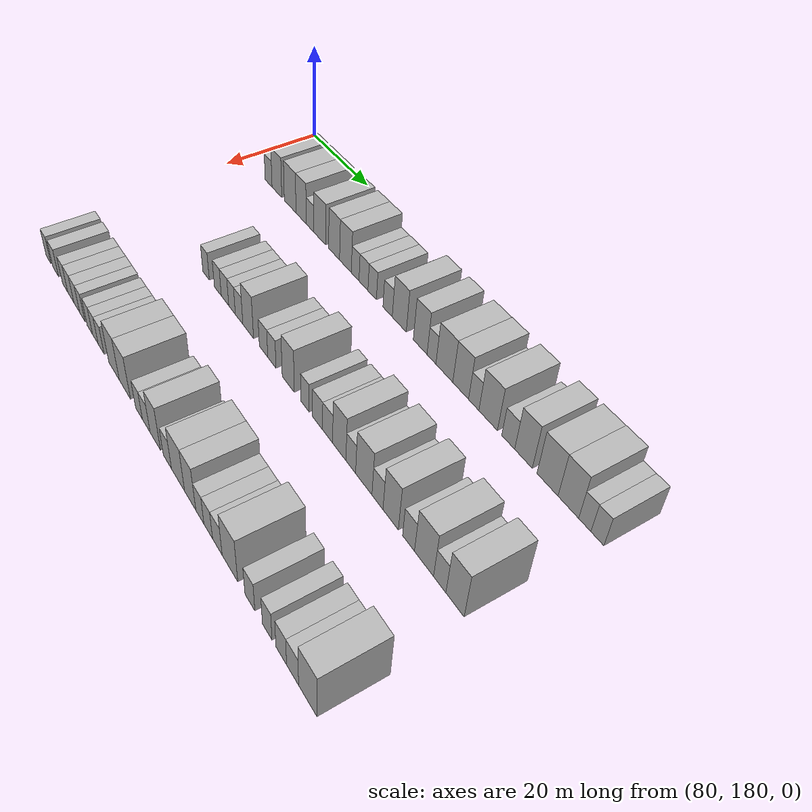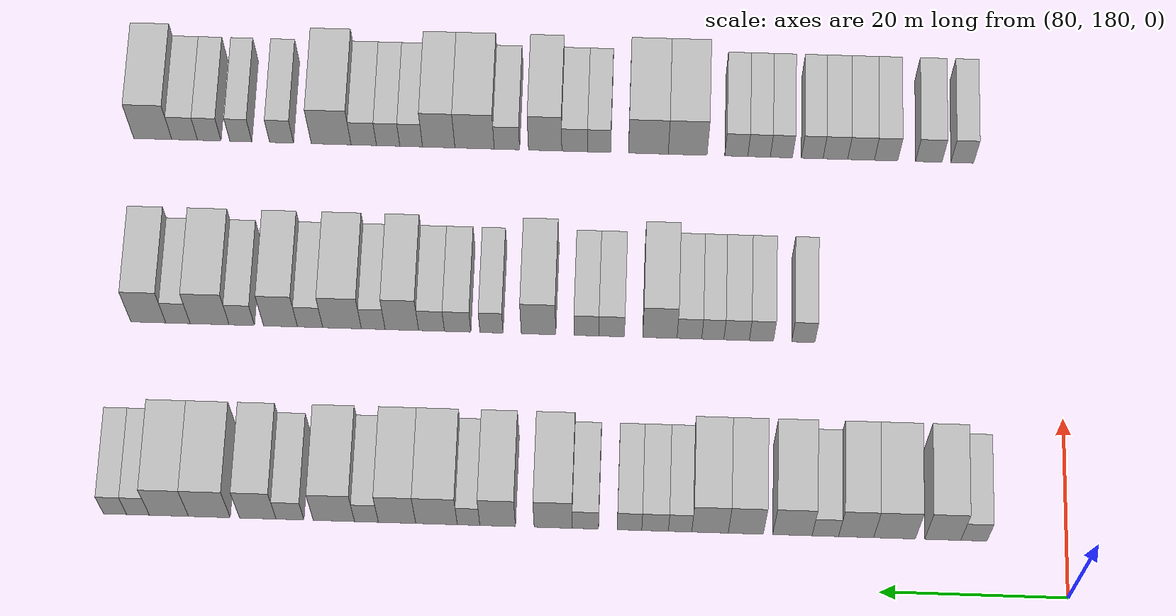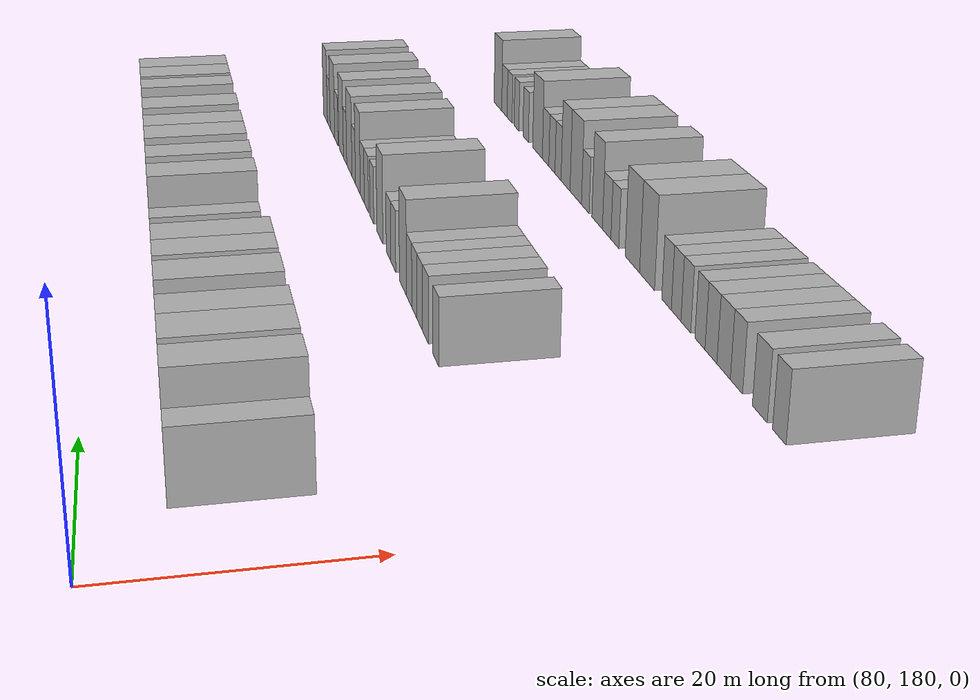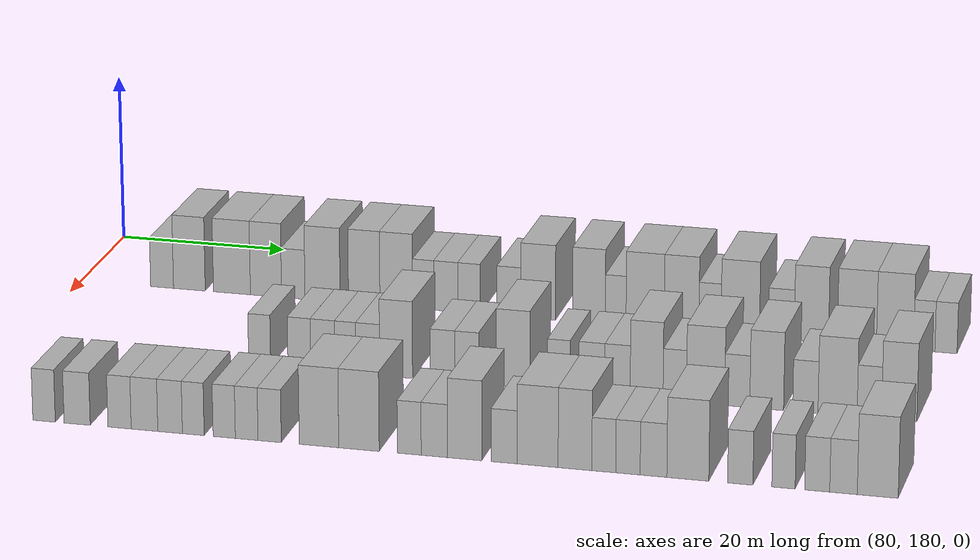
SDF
<sdf version="1.6">
 <world name="default">
  <model name="building_724">
   <static>1</static>
   <pose>91.0000 189.8804 0 0.000000 0.000000 0.000000</pose>
   <link name="link">
    <pose>0 0 3.00 0 0 0</pose>
    <collision name="collision"><geometry><box><size>10.0000 2.7889 6.0000</size></box></geometry></collision>
    <visual name="visual">
     <cast_shadows>0</cast_shadows>
     <geometry><box><size>10.0000 2.7889 6.0000</size></box></geometry>
     <material>
      <script>
       <uri>model://HANNAS_wall/materials/scripts</uri>
       <uri>model://HANNAS_wall/materials/textures</uri>
       <name>vrc/HANNAS_wall</name>
      </script>
     </material>
    </visual>
   </link>
  </model>
  <model name="building_725">
   <static>1</static>
   <pose>91.0000 193.1986 0 0.000000 0.000000 0.000000</pose>
   <link name="link">
    <pose>0 0 4.50 0 0 0</pose>
    <collision name="collision"><geometry><box><size>10.0000 3.8475 9.0000</size></box></geometry></collision>
    <visual name="visual">
     <cast_shadows>0</cast_shadows>
     <geometry><box><size>10.0000 3.8475 9.0000</size></box></geometry>
     <material>
      <script>
       <uri>model://HANNAS_wall/materials/scripts</uri>
       <uri>model://HANNAS_wall/materials/textures</uri>
       <name>vrc/HANNAS_wall</name>
      </script>
     </material>
    </visual>
   </link>
  </model>
  <model name="building_726">
   <static>1</static>
   <pose>91.0000 198.3521 0 0.000000 0.000000 0.000000</pose>
   <link name="link">
    <pose>0 0 4.50 0 0 0</pose>
    <collision name="collision"><geometry><box><size>10.0000 4.4595 9.0000</size></box></geometry></collision>
    <visual name="visual">
     <cast_shadows>0</cast_shadows>
     <geometry><box><size>10.0000 4.4595 9.0000</size></box></geometry>
     <material>
      <script>
       <uri>model://HANNAS_wall/materials/scripts</uri>
       <uri>model://HANNAS_wall/materials/textures</uri>
       <name>vrc/HANNAS_wall</name>
      </script>
     </material>
    </visual>
   </link>
  </model>
  <model name="building_727">
   <static>1</static>
   <pose>91.0000 202.4567 0 0.000000 0.000000 0.000000</pose>
   <link name="link">
    <pose>0 0 4.50 0 0 0</pose>
    <collision name="collision"><geometry><box><size>10.0000 3.7496 9.0000</size></box></geometry></collision>
    <visual name="visual">
     <cast_shadows>0</cast_shadows>
     <geometry><box><size>10.0000 3.7496 9.0000</size></box></geometry>
     <material>
      <script>
       <uri>model://HANNAS_wall/materials/scripts</uri>
       <uri>model://HANNAS_wall/materials/textures</uri>
       <name>vrc/HANNAS_wall</name>
      </script>
     </material>
    </visual>
   </link>
  </model>
  <model name="building_728">
   <static>1</static>
   <pose>91.0000 205.7435 0 0.000000 0.000000 0.000000</pose>
   <link name="link">
    <pose>0 0 3.00 0 0 0</pose>
    <collision name="collision"><geometry><box><size>10.0000 2.8241 6.0000</size></box></geometry></collision>
    <visual name="visual">
     <cast_shadows>0</cast_shadows>
     <geometry><box><size>10.0000 2.8241 6.0000</size></box></geometry>
     <material>
      <script>
       <uri>model://HANNAS_wall/materials/scripts</uri>
       <uri>model://HANNAS_wall/materials/textures</uri>
       <name>vrc/HANNAS_wall</name>
      </script>
     </material>
    </visual>
   </link>
  </model>
  <model name="building_729">
   <static>1</static>
   <pose>91.0000 209.2586 0 0.000000 0.000000 0.000000</pose>
   <link name="link">
    <pose>0 0 4.50 0 0 0</pose>
    <collision name="collision"><geometry><box><size>10.0000 4.2062 9.0000</size></box></geometry></collision>
    <visual name="visual">
     <cast_shadows>0</cast_shadows>
     <geometry><box><size>10.0000 4.2062 9.0000</size></box></geometry>
     <material>
      <script>
       <uri>model://HANNAS_wall/materials/scripts</uri>
       <uri>model://HANNAS_wall/materials/textures</uri>
       <name>vrc/HANNAS_wall</name>
      </script>
     </material>
    </visual>
   </link>
  </model>
  <model name="building_730">
   <static>1</static>
   <pose>91.0000 214.2354 0 0.000000 0.000000 0.000000</pose>
   <link name="link">
    <pose>0 0 4.50 0 0 0</pose>
    <collision name="collision"><geometry><box><size>10.0000 3.7473 9.0000</size></box></geometry></collision>
    <visual name="visual">
     <cast_shadows>0</cast_shadows>
     <geometry><box><size>10.0000 3.7473 9.0000</size></box></geometry>
     <material>
      <script>
       <uri>model://HANNAS_wall/materials/scripts</uri>
       <uri>model://HANNAS_wall/materials/textures</uri>
       <name>vrc/HANNAS_wall</name>
      </script>
     </material>
    </visual>
   </link>
  </model>
  <model name="building_731">
   <static>1</static>
   <pose>91.0000 218.0585 0 0.000000 0.000000 0.000000</pose>
   <link name="link">
    <pose>0 0 4.50 0 0 0</pose>
    <collision name="collision"><geometry><box><size>10.0000 3.8989 9.0000</size></box></geometry></collision>
    <visual name="visual">
     <cast_shadows>0</cast_shadows>
     <geometry><box><size>10.0000 3.8989 9.0000</size></box></geometry>
     <material>
      <script>
       <uri>model://HANNAS_wall/materials/scripts</uri>
       <uri>model://HANNAS_wall/materials/textures</uri>
       <name>vrc/HANNAS_wall</name>
      </script>
     </material>
    </visual>
   </link>
  </model>
  <model name="building_732">
   <static>1</static>
   <pose>91.0000 221.2585 0 0.000000 0.000000 0.000000</pose>
   <link name="link">
    <pose>0 0 3.00 0 0 0</pose>
    <collision name="collision"><geometry><box><size>10.0000 2.5012 6.0000</size></box></geometry></collision>
    <visual name="visual">
     <cast_shadows>0</cast_shadows>
     <geometry><box><size>10.0000 2.5012 6.0000</size></box></geometry>
     <material>
      <script>
       <uri>model://HANNAS_wall/materials/scripts</uri>
       <uri>model://HANNAS_wall/materials/textures</uri>
       <name>vrc/HANNAS_wall</name>
      </script>
     </material>
    </visual>
   </link>
  </model>
  <model name="building_733">
   <static>1</static>
   <pose>91.0000 223.9332 0 0.000000 0.000000 0.000000</pose>
   <link name="link">
    <pose>0 0 3.00 0 0 0</pose>
    <collision name="collision"><geometry><box><size>10.0000 2.8482 6.0000</size></box></geometry></collision>
    <visual name="visual">
     <cast_shadows>0</cast_shadows>
     <geometry><box><size>10.0000 2.8482 6.0000</size></box></geometry>
     <material>
      <script>
       <uri>model://HANNAS_wall/materials/scripts</uri>
       <uri>model://HANNAS_wall/materials/textures</uri>
       <name>vrc/HANNAS_wall</name>
      </script>
     </material>
    </visual>
   </link>
  </model>
  <model name="building_734">
   <static>1</static>
   <pose>91.0000 226.6654 0 0.000000 0.000000 0.000000</pose>
   <link name="link">
    <pose>0 0 3.00 0 0 0</pose>
    <collision name="collision"><geometry><box><size>10.0000 2.6163 6.0000</size></box></geometry></collision>
    <visual name="visual">
     <cast_shadows>0</cast_shadows>
     <geometry><box><size>10.0000 2.6163 6.0000</size></box></geometry>
     <material>
      <script>
       <uri>model://HANNAS_wall/materials/scripts</uri>
       <uri>model://HANNAS_wall/materials/textures</uri>
       <name>vrc/HANNAS_wall</name>
      </script>
     </material>
    </visual>
   </link>
  </model>
  <model name="building_735">
   <static>1</static>
   <pose>91.0000 231.3733 0 0.000000 0.000000 0.000000</pose>
   <link name="link">
    <pose>0 0 3.00 0 0 0</pose>
    <collision name="collision"><geometry><box><size>10.0000 2.7994 6.0000</size></box></geometry></collision>
    <visual name="visual">
     <cast_shadows>0</cast_shadows>
     <geometry><box><size>10.0000 2.7994 6.0000</size></box></geometry>
     <material>
      <script>
       <uri>model://HANNAS_wall/materials/scripts</uri>
       <uri>model://HANNAS_wall/materials/textures</uri>
       <name>vrc/HANNAS_wall</name>
      </script>
     </material>
    </visual>
   </link>
  </model>
  <model name="building_736">
   <static>1</static>
   <pose>91.0000 234.8150 0 0.000000 0.000000 0.000000</pose>
   <link name="link">
    <pose>0 0 4.50 0 0 0</pose>
    <collision name="collision"><geometry><box><size>10.0000 4.0840 9.0000</size></box></geometry></collision>
    <visual name="visual">
     <cast_shadows>0</cast_shadows>
     <geometry><box><size>10.0000 4.0840 9.0000</size></box></geometry>
     <material>
      <script>
       <uri>model://HANNAS_wall/materials/scripts</uri>
       <uri>model://HANNAS_wall/materials/textures</uri>
       <name>vrc/HANNAS_wall</name>
      </script>
     </material>
    </visual>
   </link>
  </model>
  <model name="building_737">
   <static>1</static>
   <pose>91.0000 240.7653 0 0.000000 0.000000 0.000000</pose>
   <link name="link">
    <pose>0 0 4.50 0 0 0</pose>
    <collision name="collision"><geometry><box><size>10.0000 3.8164 9.0000</size></box></geometry></collision>
    <visual name="visual">
     <cast_shadows>0</cast_shadows>
     <geometry><box><size>10.0000 3.8164 9.0000</size></box></geometry>
     <material>
      <script>
       <uri>model://HANNAS_wall/materials/scripts</uri>
       <uri>model://HANNAS_wall/materials/textures</uri>
       <name>vrc/HANNAS_wall</name>
      </script>
     </material>
    </visual>
   </link>
  </model>
  <model name="building_738">
   <static>1</static>
   <pose>91.0000 243.8779 0 0.000000 0.000000 0.000000</pose>
   <link name="link">
    <pose>0 0 3.00 0 0 0</pose>
    <collision name="collision"><geometry><box><size>10.0000 2.4088 6.0000</size></box></geometry></collision>
    <visual name="visual">
     <cast_shadows>0</cast_shadows>
     <geometry><box><size>10.0000 2.4088 6.0000</size></box></geometry>
     <material>
      <script>
       <uri>model://HANNAS_wall/materials/scripts</uri>
       <uri>model://HANNAS_wall/materials/textures</uri>
       <name>vrc/HANNAS_wall</name>
      </script>
     </material>
    </visual>
   </link>
  </model>
  <model name="building_739">
   <static>1</static>
   <pose>91.0000 247.3062 0 0.000000 0.000000 0.000000</pose>
   <link name="link">
    <pose>0 0 4.50 0 0 0</pose>
    <collision name="collision"><geometry><box><size>10.0000 4.4479 9.0000</size></box></geometry></collision>
    <visual name="visual">
     <cast_shadows>0</cast_shadows>
     <geometry><box><size>10.0000 4.4479 9.0000</size></box></geometry>
     <material>
      <script>
       <uri>model://HANNAS_wall/materials/scripts</uri>
       <uri>model://HANNAS_wall/materials/textures</uri>
       <name>vrc/HANNAS_wall</name>
      </script>
     </material>
    </visual>
   </link>
  </model>
  <model name="building_740">
   <static>1</static>
   <pose>91.0000 251.5314 0 0.000000 0.000000 0.000000</pose>
   <link name="link">
    <pose>0 0 4.50 0 0 0</pose>
    <collision name="collision"><geometry><box><size>10.0000 4.0025 9.0000</size></box></geometry></collision>
    <visual name="visual">
     <cast_shadows>0</cast_shadows>
     <geometry><box><size>10.0000 4.0025 9.0000</size></box></geometry>
     <material>
      <script>
       <uri>model://HANNAS_wall/materials/scripts</uri>
       <uri>model://HANNAS_wall/materials/textures</uri>
       <name>vrc/HANNAS_wall</name>
      </script>
     </material>
    </visual>
   </link>
  </model>
  <model name="building_741">
   <static>1</static>
   <pose>91.0000 254.8111 0 0.000000 0.000000 0.000000</pose>
   <link name="link">
    <pose>0 0 3.00 0 0 0</pose>
    <collision name="collision"><geometry><box><size>10.0000 2.5569 6.0000</size></box></geometry></collision>
    <visual name="visual">
     <cast_shadows>0</cast_shadows>
     <geometry><box><size>10.0000 2.5569 6.0000</size></box></geometry>
     <material>
      <script>
       <uri>model://HANNAS_wall/materials/scripts</uri>
       <uri>model://HANNAS_wall/materials/textures</uri>
       <name>vrc/HANNAS_wall</name>
      </script>
     </material>
    </visual>
   </link>
  </model>
  <model name="building_742">
   <static>1</static>
   <pose>91.0000 258.3022 0 0.000000 0.000000 0.000000</pose>
   <link name="link">
    <pose>0 0 4.50 0 0 0</pose>
    <collision name="collision"><geometry><box><size>10.0000 4.4252 9.0000</size></box></geometry></collision>
    <visual name="visual">
     <cast_shadows>0</cast_shadows>
     <geometry><box><size>10.0000 4.4252 9.0000</size></box></geometry>
     <material>
      <script>
       <uri>model://HANNAS_wall/materials/scripts</uri>
       <uri>model://HANNAS_wall/materials/textures</uri>
       <name>vrc/HANNAS_wall</name>
      </script>
     </material>
    </visual>
   </link>
  </model>
  <model name="building_743">
   <static>1</static>
   <pose>91.0000 263.0069 0 0.000000 0.000000 0.000000</pose>
   <link name="link">
    <pose>0 0 3.00 0 0 0</pose>
    <collision name="collision"><geometry><box><size>10.0000 2.9842 6.0000</size></box></geometry></collision>
    <visual name="visual">
     <cast_shadows>0</cast_shadows>
     <geometry><box><size>10.0000 2.9842 6.0000</size></box></geometry>
     <material>
      <script>
       <uri>model://HANNAS_wall/materials/scripts</uri>
       <uri>model://HANNAS_wall/materials/textures</uri>
       <name>vrc/HANNAS_wall</name>
      </script>
     </material>
    </visual>
   </link>
  </model>
  <model name="building_744">
   <static>1</static>
   <pose>91.0000 266.4604 0 0.000000 0.000000 0.000000</pose>
   <link name="link">
    <pose>0 0 4.50 0 0 0</pose>
    <collision name="collision"><geometry><box><size>10.0000 3.9228 9.0000</size></box></geometry></collision>
    <visual name="visual">
     <cast_shadows>0</cast_shadows>
     <geometry><box><size>10.0000 3.9228 9.0000</size></box></geometry>
     <material>
      <script>
       <uri>model://HANNAS_wall/materials/scripts</uri>
       <uri>model://HANNAS_wall/materials/textures</uri>
       <name>vrc/HANNAS_wall</name>
      </script>
     </material>
    </visual>
   </link>
  </model>
  <model name="building_745">
   <static>1</static>
   <pose>91.0000 271.6561 0 0.000000 0.000000 0.000000</pose>
   <link name="link">
    <pose>0 0 4.50 0 0 0</pose>
    <collision name="collision"><geometry><box><size>10.0000 4.4686 9.0000</size></box></geometry></collision>
    <visual name="visual">
     <cast_shadows>0</cast_shadows>
     <geometry><box><size>10.0000 4.4686 9.0000</size></box></geometry>
     <material>
      <script>
       <uri>model://HANNAS_wall/materials/scripts</uri>
       <uri>model://HANNAS_wall/materials/textures</uri>
       <name>vrc/HANNAS_wall</name>
      </script>
     </material>
    </visual>
   </link>
  </model>
  <model name="building_746">
   <static>1</static>
   <pose>91.0000 275.9913 0 0.000000 0.000000 0.000000</pose>
   <link name="link">
    <pose>0 0 4.50 0 0 0</pose>
    <collision name="collision"><geometry><box><size>10.0000 4.2018 9.0000</size></box></geometry></collision>
    <visual name="visual">
     <cast_shadows>0</cast_shadows>
     <geometry><box><size>10.0000 4.2018 9.0000</size></box></geometry>
     <material>
      <script>
       <uri>model://HANNAS_wall/materials/scripts</uri>
       <uri>model://HANNAS_wall/materials/textures</uri>
       <name>vrc/HANNAS_wall</name>
      </script>
     </material>
    </visual>
   </link>
  </model>
  <model name="building_747">
   <static>1</static>
   <pose>91.0000 279.3053 0 0.000000 0.000000 0.000000</pose>
   <link name="link">
    <pose>0 0 3.00 0 0 0</pose>
    <collision name="collision"><geometry><box><size>10.0000 2.4262 6.0000</size></box></geometry></collision>
    <visual name="visual">
     <cast_shadows>0</cast_shadows>
     <geometry><box><size>10.0000 2.4262 6.0000</size></box></geometry>
     <material>
      <script>
       <uri>model://HANNAS_wall/materials/scripts</uri>
       <uri>model://HANNAS_wall/materials/textures</uri>
       <name>vrc/HANNAS_wall</name>
      </script>
     </material>
    </visual>
   </link>
  </model>
  <model name="building_748">
   <static>1</static>
   <pose>91.0000 281.7673 0 0.000000 0.000000 0.000000</pose>
   <link name="link">
    <pose>0 0 3.00 0 0 0</pose>
    <collision name="collision"><geometry><box><size>10.0000 2.4978 6.0000</size></box></geometry></collision>
    <visual name="visual">
     <cast_shadows>0</cast_shadows>
     <geometry><box><size>10.0000 2.4978 6.0000</size></box></geometry>
     <material>
      <script>
       <uri>model://HANNAS_wall/materials/scripts</uri>
       <uri>model://HANNAS_wall/materials/textures</uri>
       <name>vrc/HANNAS_wall</name>
      </script>
     </material>
    </visual>
   </link>
  </model>
  <model name="building_914">
   <static>1</static>
   <pose>113.0000 208.2223 0 0.000000 0.000000 0.000000</pose>
   <link name="link">
    <pose>0 0 3.00 0 0 0</pose>
    <collision name="collision"><geometry><box><size>10.0000 2.5437 6.0000</size></box></geometry></collision>
    <visual name="visual">
     <cast_shadows>0</cast_shadows>
     <geometry><box><size>10.0000 2.5437 6.0000</size></box></geometry>
     <material>
      <script>
       <uri>model://HANNAS_wall/materials/scripts</uri>
       <uri>model://HANNAS_wall/materials/textures</uri>
       <name>vrc/HANNAS_wall</name>
      </script>
     </material>
    </visual>
   </link>
  </model>
  <model name="building_915">
   <static>1</static>
   <pose>113.0000 212.8121 0 0.000000 0.000000 0.000000</pose>
   <link name="link">
    <pose>0 0 3.00 0 0 0</pose>
    <collision name="collision"><geometry><box><size>10.0000 2.6360 6.0000</size></box></geometry></collision>
    <visual name="visual">
     <cast_shadows>0</cast_shadows>
     <geometry><box><size>10.0000 2.6360 6.0000</size></box></geometry>
     <material>
      <script>
       <uri>model://HANNAS_wall/materials/scripts</uri>
       <uri>model://HANNAS_wall/materials/textures</uri>
       <name>vrc/HANNAS_wall</name>
      </script>
     </material>
    </visual>
   </link>
  </model>
  <model name="building_916">
   <static>1</static>
   <pose>113.0000 215.5251 0 0.000000 0.000000 0.000000</pose>
   <link name="link">
    <pose>0 0 3.00 0 0 0</pose>
    <collision name="collision"><geometry><box><size>10.0000 2.7899 6.0000</size></box></geometry></collision>
    <visual name="visual">
     <cast_shadows>0</cast_shadows>
     <geometry><box><size>10.0000 2.7899 6.0000</size></box></geometry>
     <material>
      <script>
       <uri>model://HANNAS_wall/materials/scripts</uri>
       <uri>model://HANNAS_wall/materials/textures</uri>
       <name>vrc/HANNAS_wall</name>
      </script>
     </material>
    </visual>
   </link>
  </model>
  <model name="building_917">
   <static>1</static>
   <pose>113.0000 218.1311 0 0.000000 0.000000 0.000000</pose>
   <link name="link">
    <pose>0 0 3.00 0 0 0</pose>
    <collision name="collision"><geometry><box><size>10.0000 2.4221 6.0000</size></box></geometry></collision>
    <visual name="visual">
     <cast_shadows>0</cast_shadows>
     <geometry><box><size>10.0000 2.4221 6.0000</size></box></geometry>
     <material>
      <script>
       <uri>model://HANNAS_wall/materials/scripts</uri>
       <uri>model://HANNAS_wall/materials/textures</uri>
       <name>vrc/HANNAS_wall</name>
      </script>
     </material>
    </visual>
   </link>
  </model>
  <model name="building_918">
   <static>1</static>
   <pose>113.0000 220.6986 0 0.000000 0.000000 0.000000</pose>
   <link name="link">
    <pose>0 0 3.00 0 0 0</pose>
    <collision name="collision"><geometry><box><size>10.0000 2.7128 6.0000</size></box></geometry></collision>
    <visual name="visual">
     <cast_shadows>0</cast_shadows>
     <geometry><box><size>10.0000 2.7128 6.0000</size></box></geometry>
     <material>
      <script>
       <uri>model://HANNAS_wall/materials/scripts</uri>
       <uri>model://HANNAS_wall/materials/textures</uri>
       <name>vrc/HANNAS_wall</name>
      </script>
     </material>
    </visual>
   </link>
  </model>
  <model name="building_919">
   <static>1</static>
   <pose>113.0000 223.9327 0 0.000000 0.000000 0.000000</pose>
   <link name="link">
    <pose>0 0 4.50 0 0 0</pose>
    <collision name="collision"><geometry><box><size>10.0000 3.7555 9.0000</size></box></geometry></collision>
    <visual name="visual">
     <cast_shadows>0</cast_shadows>
     <geometry><box><size>10.0000 3.7555 9.0000</size></box></geometry>
     <material>
      <script>
       <uri>model://HANNAS_wall/materials/scripts</uri>
       <uri>model://HANNAS_wall/materials/textures</uri>
       <name>vrc/HANNAS_wall</name>
      </script>
     </material>
    </visual>
   </link>
  </model>
  <model name="building_920">
   <static>1</static>
   <pose>113.0000 229.2202 0 0.000000 0.000000 0.000000</pose>
   <link name="link">
    <pose>0 0 3.00 0 0 0</pose>
    <collision name="collision"><geometry><box><size>10.0000 2.8194 6.0000</size></box></geometry></collision>
    <visual name="visual">
     <cast_shadows>0</cast_shadows>
     <geometry><box><size>10.0000 2.8194 6.0000</size></box></geometry>
     <material>
      <script>
       <uri>model://HANNAS_wall/materials/scripts</uri>
       <uri>model://HANNAS_wall/materials/textures</uri>
       <name>vrc/HANNAS_wall</name>
      </script>
     </material>
    </visual>
   </link>
  </model>
  <model name="building_921">
   <static>1</static>
   <pose>113.0000 231.9845 0 0.000000 0.000000 0.000000</pose>
   <link name="link">
    <pose>0 0 3.00 0 0 0</pose>
    <collision name="collision"><geometry><box><size>10.0000 2.7093 6.0000</size></box></geometry></collision>
    <visual name="visual">
     <cast_shadows>0</cast_shadows>
     <geometry><box><size>10.0000 2.7093 6.0000</size></box></geometry>
     <material>
      <script>
       <uri>model://HANNAS_wall/materials/scripts</uri>
       <uri>model://HANNAS_wall/materials/textures</uri>
       <name>vrc/HANNAS_wall</name>
      </script>
     </material>
    </visual>
   </link>
  </model>
  <model name="building_922">
   <static>1</static>
   <pose>113.0000 237.2300 0 0.000000 0.000000 0.000000</pose>
   <link name="link">
    <pose>0 0 4.50 0 0 0</pose>
    <collision name="collision"><geometry><box><size>10.0000 3.7817 9.0000</size></box></geometry></collision>
    <visual name="visual">
     <cast_shadows>0</cast_shadows>
     <geometry><box><size>10.0000 3.7817 9.0000</size></box></geometry>
     <material>
      <script>
       <uri>model://HANNAS_wall/materials/scripts</uri>
       <uri>model://HANNAS_wall/materials/textures</uri>
       <name>vrc/HANNAS_wall</name>
      </script>
     </material>
    </visual>
   </link>
  </model>
  <model name="building_923">
   <static>1</static>
   <pose>113.0000 242.3902 0 0.000000 0.000000 0.000000</pose>
   <link name="link">
    <pose>0 0 3.00 0 0 0</pose>
    <collision name="collision"><geometry><box><size>10.0000 2.5387 6.0000</size></box></geometry></collision>
    <visual name="visual">
     <cast_shadows>0</cast_shadows>
     <geometry><box><size>10.0000 2.5387 6.0000</size></box></geometry>
     <material>
      <script>
       <uri>model://HANNAS_wall/materials/scripts</uri>
       <uri>model://HANNAS_wall/materials/textures</uri>
       <name>vrc/HANNAS_wall</name>
      </script>
     </material>
    </visual>
   </link>
  </model>
  <model name="building_924">
   <static>1</static>
   <pose>113.0000 246.1092 0 0.000000 0.000000 0.000000</pose>
   <link name="link">
    <pose>0 0 3.00 0 0 0</pose>
    <collision name="collision"><geometry><box><size>10.0000 2.8992 6.0000</size></box></geometry></collision>
    <visual name="visual">
     <cast_shadows>0</cast_shadows>
     <geometry><box><size>10.0000 2.8992 6.0000</size></box></geometry>
     <material>
      <script>
       <uri>model://HANNAS_wall/materials/scripts</uri>
       <uri>model://HANNAS_wall/materials/textures</uri>
       <name>vrc/HANNAS_wall</name>
      </script>
     </material>
    </visual>
   </link>
  </model>
  <model name="building_925">
   <static>1</static>
   <pose>113.0000 248.9770 0 0.000000 0.000000 0.000000</pose>
   <link name="link">
    <pose>0 0 3.00 0 0 0</pose>
    <collision name="collision"><geometry><box><size>10.0000 2.8364 6.0000</size></box></geometry></collision>
    <visual name="visual">
     <cast_shadows>0</cast_shadows>
     <geometry><box><size>10.0000 2.8364 6.0000</size></box></geometry>
     <material>
      <script>
       <uri>model://HANNAS_wall/materials/scripts</uri>
       <uri>model://HANNAS_wall/materials/textures</uri>
       <name>vrc/HANNAS_wall</name>
      </script>
     </material>
    </visual>
   </link>
  </model>
  <model name="building_926">
   <static>1</static>
   <pose>113.0000 252.2330 0 0.000000 0.000000 0.000000</pose>
   <link name="link">
    <pose>0 0 4.50 0 0 0</pose>
    <collision name="collision"><geometry><box><size>10.0000 3.6758 9.0000</size></box></geometry></collision>
    <visual name="visual">
     <cast_shadows>0</cast_shadows>
     <geometry><box><size>10.0000 3.6758 9.0000</size></box></geometry>
     <material>
      <script>
       <uri>model://HANNAS_wall/materials/scripts</uri>
       <uri>model://HANNAS_wall/materials/textures</uri>
       <name>vrc/HANNAS_wall</name>
      </script>
     </material>
    </visual>
   </link>
  </model>
  <model name="building_927">
   <static>1</static>
   <pose>113.0000 255.3740 0 0.000000 0.000000 0.000000</pose>
   <link name="link">
    <pose>0 0 3.00 0 0 0</pose>
    <collision name="collision"><geometry><box><size>10.0000 2.6062 6.0000</size></box></geometry></collision>
    <visual name="visual">
     <cast_shadows>0</cast_shadows>
     <geometry><box><size>10.0000 2.6062 6.0000</size></box></geometry>
     <material>
      <script>
       <uri>model://HANNAS_wall/materials/scripts</uri>
       <uri>model://HANNAS_wall/materials/textures</uri>
       <name>vrc/HANNAS_wall</name>
      </script>
     </material>
    </visual>
   </link>
  </model>
  <model name="building_928">
   <static>1</static>
   <pose>113.0000 258.8007 0 0.000000 0.000000 0.000000</pose>
   <link name="link">
    <pose>0 0 4.50 0 0 0</pose>
    <collision name="collision"><geometry><box><size>10.0000 4.2472 9.0000</size></box></geometry></collision>
    <visual name="visual">
     <cast_shadows>0</cast_shadows>
     <geometry><box><size>10.0000 4.2472 9.0000</size></box></geometry>
     <material>
      <script>
       <uri>model://HANNAS_wall/materials/scripts</uri>
       <uri>model://HANNAS_wall/materials/textures</uri>
       <name>vrc/HANNAS_wall</name>
      </script>
     </material>
    </visual>
   </link>
  </model>
  <model name="building_929">
   <static>1</static>
   <pose>113.0000 262.3127 0 0.000000 0.000000 0.000000</pose>
   <link name="link">
    <pose>0 0 3.00 0 0 0</pose>
    <collision name="collision"><geometry><box><size>10.0000 2.7769 6.0000</size></box></geometry></collision>
    <visual name="visual">
     <cast_shadows>0</cast_shadows>
     <geometry><box><size>10.0000 2.7769 6.0000</size></box></geometry>
     <material>
      <script>
       <uri>model://HANNAS_wall/materials/scripts</uri>
       <uri>model://HANNAS_wall/materials/textures</uri>
       <name>vrc/HANNAS_wall</name>
      </script>
     </material>
    </visual>
   </link>
  </model>
  <model name="building_930">
   <static>1</static>
   <pose>113.0000 265.5666 0 0.000000 0.000000 0.000000</pose>
   <link name="link">
    <pose>0 0 4.50 0 0 0</pose>
    <collision name="collision"><geometry><box><size>10.0000 3.7308 9.0000</size></box></geometry></collision>
    <visual name="visual">
     <cast_shadows>0</cast_shadows>
     <geometry><box><size>10.0000 3.7308 9.0000</size></box></geometry>
     <material>
      <script>
       <uri>model://HANNAS_wall/materials/scripts</uri>
       <uri>model://HANNAS_wall/materials/textures</uri>
       <name>vrc/HANNAS_wall</name>
      </script>
     </material>
    </visual>
   </link>
  </model>
  <model name="building_931">
   <static>1</static>
   <pose>113.0000 269.8251 0 0.000000 0.000000 0.000000</pose>
   <link name="link">
    <pose>0 0 3.00 0 0 0</pose>
    <collision name="collision"><geometry><box><size>10.0000 2.7864 6.0000</size></box></geometry></collision>
    <visual name="visual">
     <cast_shadows>0</cast_shadows>
     <geometry><box><size>10.0000 2.7864 6.0000</size></box></geometry>
     <material>
      <script>
       <uri>model://HANNAS_wall/materials/scripts</uri>
       <uri>model://HANNAS_wall/materials/textures</uri>
       <name>vrc/HANNAS_wall</name>
      </script>
     </material>
    </visual>
   </link>
  </model>
  <model name="building_932">
   <static>1</static>
   <pose>113.0000 273.3638 0 0.000000 0.000000 0.000000</pose>
   <link name="link">
    <pose>0 0 4.50 0 0 0</pose>
    <collision name="collision"><geometry><box><size>10.0000 4.2909 9.0000</size></box></geometry></collision>
    <visual name="visual">
     <cast_shadows>0</cast_shadows>
     <geometry><box><size>10.0000 4.2909 9.0000</size></box></geometry>
     <material>
      <script>
       <uri>model://HANNAS_wall/materials/scripts</uri>
       <uri>model://HANNAS_wall/materials/textures</uri>
       <name>vrc/HANNAS_wall</name>
      </script>
     </material>
    </visual>
   </link>
  </model>
  <model name="building_933">
   <static>1</static>
   <pose>113.0000 276.8474 0 0.000000 0.000000 0.000000</pose>
   <link name="link">
    <pose>0 0 3.00 0 0 0</pose>
    <collision name="collision"><geometry><box><size>10.0000 2.6763 6.0000</size></box></geometry></collision>
    <visual name="visual">
     <cast_shadows>0</cast_shadows>
     <geometry><box><size>10.0000 2.6763 6.0000</size></box></geometry>
     <material>
      <script>
       <uri>model://HANNAS_wall/materials/scripts</uri>
       <uri>model://HANNAS_wall/materials/textures</uri>
       <name>vrc/HANNAS_wall</name>
      </script>
     </material>
    </visual>
   </link>
  </model>
  <model name="building_934">
   <static>1</static>
   <pose>113.0000 280.1054 0 0.000000 0.000000 0.000000</pose>
   <link name="link">
    <pose>0 0 4.50 0 0 0</pose>
    <collision name="collision"><geometry><box><size>10.0000 3.8397 9.0000</size></box></geometry></collision>
    <visual name="visual">
     <cast_shadows>0</cast_shadows>
     <geometry><box><size>10.0000 3.8397 9.0000</size></box></geometry>
     <material>
      <script>
       <uri>model://HANNAS_wall/materials/scripts</uri>
       <uri>model://HANNAS_wall/materials/textures</uri>
       <name>vrc/HANNAS_wall</name>
      </script>
     </material>
    </visual>
   </link>
  </model>
  <model name="building_1105">
   <static>1</static>
   <pose>135.0000 190.5212 0 0.000000 0.000000 0.000000</pose>
   <link name="link">
    <pose>0 0 3.00 0 0 0</pose>
    <collision name="collision"><geometry><box><size>10.0000 2.5480 6.0000</size></box></geometry></collision>
    <visual name="visual">
     <cast_shadows>0</cast_shadows>
     <geometry><box><size>10.0000 2.5480 6.0000</size></box></geometry>
     <material>
      <script>
       <uri>model://HANNAS_wall/materials/scripts</uri>
       <uri>model://HANNAS_wall/materials/textures</uri>
       <name>vrc/HANNAS_wall</name>
      </script>
     </material>
    </visual>
   </link>
  </model>
  <model name="building_1106">
   <static>1</static>
   <pose>135.0000 194.2729 0 0.000000 0.000000 0.000000</pose>
   <link name="link">
    <pose>0 0 3.00 0 0 0</pose>
    <collision name="collision"><geometry><box><size>10.0000 2.9553 6.0000</size></box></geometry></collision>
    <visual name="visual">
     <cast_shadows>0</cast_shadows>
     <geometry><box><size>10.0000 2.9553 6.0000</size></box></geometry>
     <material>
      <script>
       <uri>model://HANNAS_wall/materials/scripts</uri>
       <uri>model://HANNAS_wall/materials/textures</uri>
       <name>vrc/HANNAS_wall</name>
      </script>
     </material>
    </visual>
   </link>
  </model>
  <model name="building_1107">
   <static>1</static>
   <pose>135.0000 199.0604 0 0.000000 0.000000 0.000000</pose>
   <link name="link">
    <pose>0 0 3.00 0 0 0</pose>
    <collision name="collision"><geometry><box><size>10.0000 2.6197 6.0000</size></box></geometry></collision>
    <visual name="visual">
     <cast_shadows>0</cast_shadows>
     <geometry><box><size>10.0000 2.6197 6.0000</size></box></geometry>
     <material>
      <script>
       <uri>model://HANNAS_wall/materials/scripts</uri>
       <uri>model://HANNAS_wall/materials/textures</uri>
       <name>vrc/HANNAS_wall</name>
      </script>
     </material>
    </visual>
   </link>
  </model>
  <model name="building_1108">
   <static>1</static>
   <pose>135.0000 201.8662 0 0.000000 0.000000 0.000000</pose>
   <link name="link">
    <pose>0 0 3.00 0 0 0</pose>
    <collision name="collision"><geometry><box><size>10.0000 2.9920 6.0000</size></box></geometry></collision>
    <visual name="visual">
     <cast_shadows>0</cast_shadows>
     <geometry><box><size>10.0000 2.9920 6.0000</size></box></geometry>
     <material>
      <script>
       <uri>model://HANNAS_wall/materials/scripts</uri>
       <uri>model://HANNAS_wall/materials/textures</uri>
       <name>vrc/HANNAS_wall</name>
      </script>
     </material>
    </visual>
   </link>
  </model>
  <model name="building_1109">
   <static>1</static>
   <pose>135.0000 204.7433 0 0.000000 0.000000 0.000000</pose>
   <link name="link">
    <pose>0 0 3.00 0 0 0</pose>
    <collision name="collision"><geometry><box><size>10.0000 2.7621 6.0000</size></box></geometry></collision>
    <visual name="visual">
     <cast_shadows>0</cast_shadows>
     <geometry><box><size>10.0000 2.7621 6.0000</size></box></geometry>
     <material>
      <script>
       <uri>model://HANNAS_wall/materials/scripts</uri>
       <uri>model://HANNAS_wall/materials/textures</uri>
       <name>vrc/HANNAS_wall</name>
      </script>
     </material>
    </visual>
   </link>
  </model>
  <model name="building_1110">
   <static>1</static>
   <pose>135.0000 207.3419 0 0.000000 0.000000 0.000000</pose>
   <link name="link">
    <pose>0 0 3.00 0 0 0</pose>
    <collision name="collision"><geometry><box><size>10.0000 2.4350 6.0000</size></box></geometry></collision>
    <visual name="visual">
     <cast_shadows>0</cast_shadows>
     <geometry><box><size>10.0000 2.4350 6.0000</size></box></geometry>
     <material>
      <script>
       <uri>model://HANNAS_wall/materials/scripts</uri>
       <uri>model://HANNAS_wall/materials/textures</uri>
       <name>vrc/HANNAS_wall</name>
      </script>
     </material>
    </visual>
   </link>
  </model>
  <model name="building_1111">
   <static>1</static>
   <pose>135.0000 210.8014 0 0.000000 0.000000 0.000000</pose>
   <link name="link">
    <pose>0 0 3.00 0 0 0</pose>
    <collision name="collision"><geometry><box><size>10.0000 2.4840 6.0000</size></box></geometry></collision>
    <visual name="visual">
     <cast_shadows>0</cast_shadows>
     <geometry><box><size>10.0000 2.4840 6.0000</size></box></geometry>
     <material>
      <script>
       <uri>model://HANNAS_wall/materials/scripts</uri>
       <uri>model://HANNAS_wall/materials/textures</uri>
       <name>vrc/HANNAS_wall</name>
      </script>
     </material>
    </visual>
   </link>
  </model>
  <model name="building_1112">
   <static>1</static>
   <pose>135.0000 213.3042 0 0.000000 0.000000 0.000000</pose>
   <link name="link">
    <pose>0 0 3.00 0 0 0</pose>
    <collision name="collision"><geometry><box><size>10.0000 2.5216 6.0000</size></box></geometry></collision>
    <visual name="visual">
     <cast_shadows>0</cast_shadows>
     <geometry><box><size>10.0000 2.5216 6.0000</size></box></geometry>
     <material>
      <script>
       <uri>model://HANNAS_wall/materials/scripts</uri>
       <uri>model://HANNAS_wall/materials/textures</uri>
       <name>vrc/HANNAS_wall</name>
      </script>
     </material>
    </visual>
   </link>
  </model>
  <model name="building_1113">
   <static>1</static>
   <pose>135.0000 215.8560 0 0.000000 0.000000 0.000000</pose>
   <link name="link">
    <pose>0 0 3.00 0 0 0</pose>
    <collision name="collision"><geometry><box><size>10.0000 2.5822 6.0000</size></box></geometry></collision>
    <visual name="visual">
     <cast_shadows>0</cast_shadows>
     <geometry><box><size>10.0000 2.5822 6.0000</size></box></geometry>
     <material>
      <script>
       <uri>model://HANNAS_wall/materials/scripts</uri>
       <uri>model://HANNAS_wall/materials/textures</uri>
       <name>vrc/HANNAS_wall</name>
      </script>
     </material>
    </visual>
   </link>
  </model>
  <model name="building_1114">
   <static>1</static>
   <pose>135.0000 221.3296 0 0.000000 0.000000 0.000000</pose>
   <link name="link">
    <pose>0 0 4.50 0 0 0</pose>
    <collision name="collision"><geometry><box><size>10.0000 4.3651 9.0000</size></box></geometry></collision>
    <visual name="visual">
     <cast_shadows>0</cast_shadows>
     <geometry><box><size>10.0000 4.3651 9.0000</size></box></geometry>
     <material>
      <script>
       <uri>model://HANNAS_wall/materials/scripts</uri>
       <uri>model://HANNAS_wall/materials/textures</uri>
       <name>vrc/HANNAS_wall</name>
      </script>
     </material>
    </visual>
   </link>
  </model>
  <model name="building_1115">
   <static>1</static>
   <pose>135.0000 225.7401 0 0.000000 0.000000 0.000000</pose>
   <link name="link">
    <pose>0 0 4.50 0 0 0</pose>
    <collision name="collision"><geometry><box><size>10.0000 4.4558 9.0000</size></box></geometry></collision>
    <visual name="visual">
     <cast_shadows>0</cast_shadows>
     <geometry><box><size>10.0000 4.4558 9.0000</size></box></geometry>
     <material>
      <script>
       <uri>model://HANNAS_wall/materials/scripts</uri>
       <uri>model://HANNAS_wall/materials/textures</uri>
       <name>vrc/HANNAS_wall</name>
      </script>
     </material>
    </visual>
   </link>
  </model>
  <model name="building_1116">
   <static>1</static>
   <pose>135.0000 231.2720 0 0.000000 0.000000 0.000000</pose>
   <link name="link">
    <pose>0 0 3.00 0 0 0</pose>
    <collision name="collision"><geometry><box><size>10.0000 2.6081 6.0000</size></box></geometry></collision>
    <visual name="visual">
     <cast_shadows>0</cast_shadows>
     <geometry><box><size>10.0000 2.6081 6.0000</size></box></geometry>
     <material>
      <script>
       <uri>model://HANNAS_wall/materials/scripts</uri>
       <uri>model://HANNAS_wall/materials/textures</uri>
       <name>vrc/HANNAS_wall</name>
      </script>
     </material>
    </visual>
   </link>
  </model>
  <model name="building_1117">
   <static>1</static>
   <pose>135.0000 234.0157 0 0.000000 0.000000 0.000000</pose>
   <link name="link">
    <pose>0 0 3.00 0 0 0</pose>
    <collision name="collision"><geometry><box><size>10.0000 2.8793 6.0000</size></box></geometry></collision>
    <visual name="visual">
     <cast_shadows>0</cast_shadows>
     <geometry><box><size>10.0000 2.8793 6.0000</size></box></geometry>
     <material>
      <script>
       <uri>model://HANNAS_wall/materials/scripts</uri>
       <uri>model://HANNAS_wall/materials/textures</uri>
       <name>vrc/HANNAS_wall</name>
      </script>
     </material>
    </visual>
   </link>
  </model>
  <model name="building_1118">
   <static>1</static>
   <pose>135.0000 237.3267 0 0.000000 0.000000 0.000000</pose>
   <link name="link">
    <pose>0 0 4.50 0 0 0</pose>
    <collision name="collision"><geometry><box><size>10.0000 3.7427 9.0000</size></box></geometry></collision>
    <visual name="visual">
     <cast_shadows>0</cast_shadows>
     <geometry><box><size>10.0000 3.7427 9.0000</size></box></geometry>
     <material>
      <script>
       <uri>model://HANNAS_wall/materials/scripts</uri>
       <uri>model://HANNAS_wall/materials/textures</uri>
       <name>vrc/HANNAS_wall</name>
      </script>
     </material>
    </visual>
   </link>
  </model>
  <model name="building_1119">
   <static>1</static>
   <pose>135.0000 241.6252 0 0.000000 0.000000 0.000000</pose>
   <link name="link">
    <pose>0 0 3.00 0 0 0</pose>
    <collision name="collision"><geometry><box><size>10.0000 2.8544 6.0000</size></box></geometry></collision>
    <visual name="visual">
     <cast_shadows>0</cast_shadows>
     <geometry><box><size>10.0000 2.8544 6.0000</size></box></geometry>
     <material>
      <script>
       <uri>model://HANNAS_wall/materials/scripts</uri>
       <uri>model://HANNAS_wall/materials/textures</uri>
       <name>vrc/HANNAS_wall</name>
      </script>
     </material>
    </visual>
   </link>
  </model>
  <model name="building_1120">
   <static>1</static>
   <pose>135.0000 245.2610 0 0.000000 0.000000 0.000000</pose>
   <link name="link">
    <pose>0 0 4.50 0 0 0</pose>
    <collision name="collision"><geometry><box><size>10.0000 4.4171 9.0000</size></box></geometry></collision>
    <visual name="visual">
     <cast_shadows>0</cast_shadows>
     <geometry><box><size>10.0000 4.4171 9.0000</size></box></geometry>
     <material>
      <script>
       <uri>model://HANNAS_wall/materials/scripts</uri>
       <uri>model://HANNAS_wall/materials/textures</uri>
       <name>vrc/HANNAS_wall</name>
      </script>
     </material>
    </visual>
   </link>
  </model>
  <model name="building_1121">
   <static>1</static>
   <pose>135.0000 249.2913 0 0.000000 0.000000 0.000000</pose>
   <link name="link">
    <pose>0 0 4.50 0 0 0</pose>
    <collision name="collision"><geometry><box><size>10.0000 3.6437 9.0000</size></box></geometry></collision>
    <visual name="visual">
     <cast_shadows>0</cast_shadows>
     <geometry><box><size>10.0000 3.6437 9.0000</size></box></geometry>
     <material>
      <script>
       <uri>model://HANNAS_wall/materials/scripts</uri>
       <uri>model://HANNAS_wall/materials/textures</uri>
       <name>vrc/HANNAS_wall</name>
      </script>
     </material>
    </visual>
   </link>
  </model>
  <model name="building_1122">
   <static>1</static>
   <pose>135.0000 252.3927 0 0.000000 0.000000 0.000000</pose>
   <link name="link">
    <pose>0 0 3.00 0 0 0</pose>
    <collision name="collision"><geometry><box><size>10.0000 2.5589 6.0000</size></box></geometry></collision>
    <visual name="visual">
     <cast_shadows>0</cast_shadows>
     <geometry><box><size>10.0000 2.5589 6.0000</size></box></geometry>
     <material>
      <script>
       <uri>model://HANNAS_wall/materials/scripts</uri>
       <uri>model://HANNAS_wall/materials/textures</uri>
       <name>vrc/HANNAS_wall</name>
      </script>
     </material>
    </visual>
   </link>
  </model>
  <model name="building_1123">
   <static>1</static>
   <pose>135.0000 254.9871 0 0.000000 0.000000 0.000000</pose>
   <link name="link">
    <pose>0 0 3.00 0 0 0</pose>
    <collision name="collision"><geometry><box><size>10.0000 2.6299 6.0000</size></box></geometry></collision>
    <visual name="visual">
     <cast_shadows>0</cast_shadows>
     <geometry><box><size>10.0000 2.6299 6.0000</size></box></geometry>
     <material>
      <script>
       <uri>model://HANNAS_wall/materials/scripts</uri>
       <uri>model://HANNAS_wall/materials/textures</uri>
       <name>vrc/HANNAS_wall</name>
      </script>
     </material>
    </visual>
   </link>
  </model>
  <model name="building_1124">
   <static>1</static>
   <pose>135.0000 257.7332 0 0.000000 0.000000 0.000000</pose>
   <link name="link">
    <pose>0 0 3.00 0 0 0</pose>
    <collision name="collision"><geometry><box><size>10.0000 2.8623 6.0000</size></box></geometry></collision>
    <visual name="visual">
     <cast_shadows>0</cast_shadows>
     <geometry><box><size>10.0000 2.8623 6.0000</size></box></geometry>
     <material>
      <script>
       <uri>model://HANNAS_wall/materials/scripts</uri>
       <uri>model://HANNAS_wall/materials/textures</uri>
       <name>vrc/HANNAS_wall</name>
      </script>
     </material>
    </visual>
   </link>
  </model>
  <model name="building_1125">
   <static>1</static>
   <pose>135.0000 261.4032 0 0.000000 0.000000 0.000000</pose>
   <link name="link">
    <pose>0 0 4.50 0 0 0</pose>
    <collision name="collision"><geometry><box><size>10.0000 4.4778 9.0000</size></box></geometry></collision>
    <visual name="visual">
     <cast_shadows>0</cast_shadows>
     <geometry><box><size>10.0000 4.4778 9.0000</size></box></geometry>
     <material>
      <script>
       <uri>model://HANNAS_wall/materials/scripts</uri>
       <uri>model://HANNAS_wall/materials/textures</uri>
       <name>vrc/HANNAS_wall</name>
      </script>
     </material>
    </visual>
   </link>
  </model>
  <model name="building_1126">
   <static>1</static>
   <pose>135.0000 266.9877 0 0.000000 0.000000 0.000000</pose>
   <link name="link">
    <pose>0 0 3.00 0 0 0</pose>
    <collision name="collision"><geometry><box><size>10.0000 2.6912 6.0000</size></box></geometry></collision>
    <visual name="visual">
     <cast_shadows>0</cast_shadows>
     <geometry><box><size>10.0000 2.6912 6.0000</size></box></geometry>
     <material>
      <script>
       <uri>model://HANNAS_wall/materials/scripts</uri>
       <uri>model://HANNAS_wall/materials/textures</uri>
       <name>vrc/HANNAS_wall</name>
      </script>
     </material>
    </visual>
   </link>
  </model>
  <model name="building_1127">
   <static>1</static>
   <pose>135.0000 271.5710 0 0.000000 0.000000 0.000000</pose>
   <link name="link">
    <pose>0 0 3.00 0 0 0</pose>
    <collision name="collision"><geometry><box><size>10.0000 2.4754 6.0000</size></box></geometry></collision>
    <visual name="visual">
     <cast_shadows>0</cast_shadows>
     <geometry><box><size>10.0000 2.4754 6.0000</size></box></geometry>
     <material>
      <script>
       <uri>model://HANNAS_wall/materials/scripts</uri>
       <uri>model://HANNAS_wall/materials/textures</uri>
       <name>vrc/HANNAS_wall</name>
      </script>
     </material>
    </visual>
   </link>
  </model>
  <model name="building_1128">
   <static>1</static>
   <pose>135.0000 275.1303 0 0.000000 0.000000 0.000000</pose>
   <link name="link">
    <pose>0 0 3.00 0 0 0</pose>
    <collision name="collision"><geometry><box><size>10.0000 2.6432 6.0000</size></box></geometry></collision>
    <visual name="visual">
     <cast_shadows>0</cast_shadows>
     <geometry><box><size>10.0000 2.6432 6.0000</size></box></geometry>
     <material>
      <script>
       <uri>model://HANNAS_wall/materials/scripts</uri>
       <uri>model://HANNAS_wall/materials/textures</uri>
       <name>vrc/HANNAS_wall</name>
      </script>
     </material>
    </visual>
   </link>
  </model>
  <model name="building_1129">
   <static>1</static>
   <pose>135.0000 277.9029 0 0.000000 0.000000 0.000000</pose>
   <link name="link">
    <pose>0 0 3.00 0 0 0</pose>
    <collision name="collision"><geometry><box><size>10.0000 2.9020 6.0000</size></box></geometry></collision>
    <visual name="visual">
     <cast_shadows>0</cast_shadows>
     <geometry><box><size>10.0000 2.9020 6.0000</size></box></geometry>
     <material>
      <script>
       <uri>model://HANNAS_wall/materials/scripts</uri>
       <uri>model://HANNAS_wall/materials/textures</uri>
       <name>vrc/HANNAS_wall</name>
      </script>
     </material>
    </visual>
   </link>
  </model>
  <model name="building_1130">
   <static>1</static>
   <pose>135.0000 281.4986 0 0.000000 0.000000 0.000000</pose>
   <link name="link">
    <pose>0 0 4.50 0 0 0</pose>
    <collision name="collision"><geometry><box><size>10.0000 4.2896 9.0000</size></box></geometry></collision>
    <visual name="visual">
     <cast_shadows>0</cast_shadows>
     <geometry><box><size>10.0000 4.2896 9.0000</size></box></geometry>
     <material>
      <script>
       <uri>model://HANNAS_wall/materials/scripts</uri>
       <uri>model://HANNAS_wall/materials/textures</uri>
       <name>vrc/HANNAS_wall</name>
      </script>
     </material>
    </visual>
   </link>
  </model>
 </world>
</sdf>
